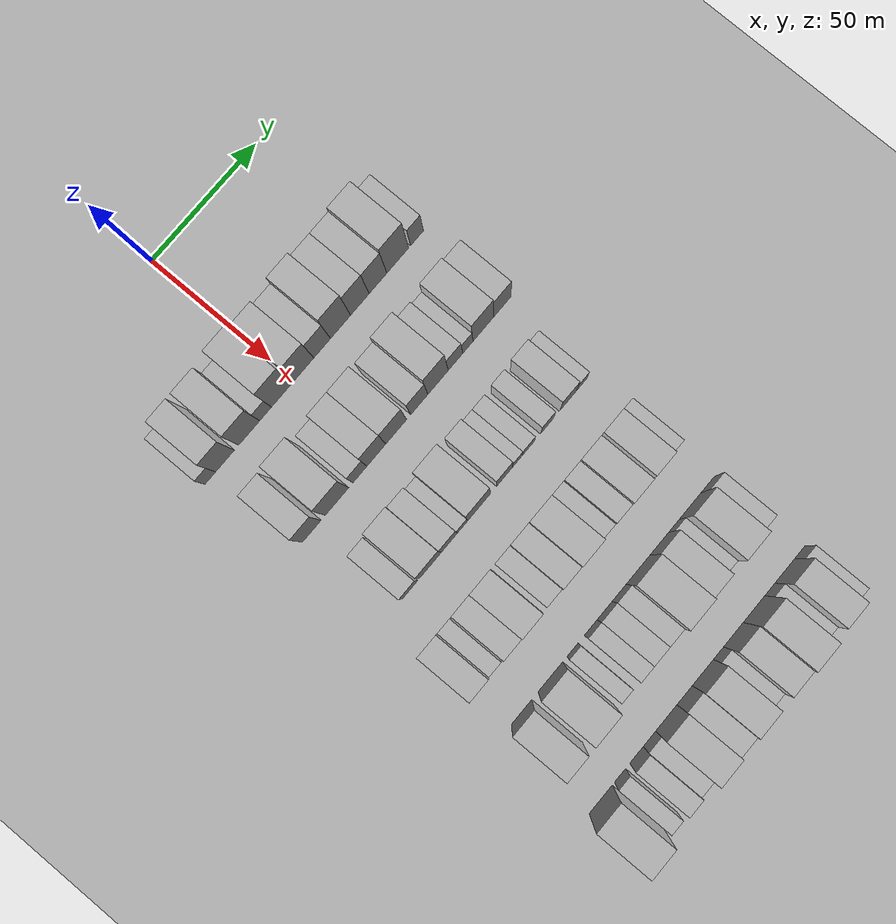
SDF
<sdf version="1.6">
 <world name="default">
  <include><name>ground_plane_1</name><uri>model://HANNAS_ground_plane</uri></include>
  <include>
   <name>ground_plane_2</name>
   <uri>model://HANNAS_ground_plane</uri>
   <pose>100 0 0  0 0 0</pose>
  </include>
  <model name="building_51">
   <static>1</static>
   <pose>50.0000 -39.9920 0 0.000000 0.000000 0.000000</pose>
   <link name="link">
    <pose>0 0 6.00 0 0 0</pose>
    <collision name="collision"><geometry><box><size>20.0000 5.0548 12.0000</size></box></geometry></collision>
    <visual name="visual">
     <cast_shadows>0</cast_shadows>
     <geometry><box><size>20.0000 5.0548 12.0000</size></box></geometry>
     <material>
      <script>
       <uri>model://HANNAS_wall/materials/scripts</uri>
       <uri>model://HANNAS_wall/materials/textures</uri>
       <name>vrc/HANNAS_wall</name>
      </script>
     </material>
    </visual>
   </link>
  </model>
  <model name="building_52">
   <static>1</static>
   <pose>50.0000 -33.0191 0 0.000000 0.000000 0.000000</pose>
   <link name="link">
    <pose>0 0 10.50 0 0 0</pose>
    <collision name="collision"><geometry><box><size>20.0000 8.8910 21.0000</size></box></geometry></collision>
    <visual name="visual">
     <cast_shadows>0</cast_shadows>
     <geometry><box><size>20.0000 8.8910 21.0000</size></box></geometry>
     <material>
      <script>
       <uri>model://HANNAS_wall/materials/scripts</uri>
       <uri>model://HANNAS_wall/materials/textures</uri>
       <name>vrc/HANNAS_wall</name>
      </script>
     </material>
    </visual>
   </link>
  </model>
  <model name="building_53">
   <static>1</static>
   <pose>50.0000 -21.5765 0 0.000000 0.000000 0.000000</pose>
   <link name="link">
    <pose>0 0 10.50 0 0 0</pose>
    <collision name="collision"><geometry><box><size>20.0000 9.9943 21.0000</size></box></geometry></collision>
    <visual name="visual">
     <cast_shadows>0</cast_shadows>
     <geometry><box><size>20.0000 9.9943 21.0000</size></box></geometry>
     <material>
      <script>
       <uri>model://HANNAS_wall/materials/scripts</uri>
       <uri>model://HANNAS_wall/materials/textures</uri>
       <name>vrc/HANNAS_wall</name>
      </script>
     </material>
    </visual>
   </link>
  </model>
  <model name="building_54">
   <static>1</static>
   <pose>50.0000 -13.7922 0 0.000000 0.000000 0.000000</pose>
   <link name="link">
    <pose>0 0 6.00 0 0 0</pose>
    <collision name="collision"><geometry><box><size>20.0000 5.5743 12.0000</size></box></geometry></collision>
    <visual name="visual">
     <cast_shadows>0</cast_shadows>
     <geometry><box><size>20.0000 5.5743 12.0000</size></box></geometry>
     <material>
      <script>
       <uri>model://HANNAS_wall/materials/scripts</uri>
       <uri>model://HANNAS_wall/materials/textures</uri>
       <name>vrc/HANNAS_wall</name>
      </script>
     </material>
    </visual>
   </link>
  </model>
  <model name="building_55">
   <static>1</static>
   <pose>50.0000 -6.0965 0 0.000000 0.000000 0.000000</pose>
   <link name="link">
    <pose>0 0 12.00 0 0 0</pose>
    <collision name="collision"><geometry><box><size>20.0000 9.8170 24.0000</size></box></geometry></collision>
    <visual name="visual">
     <cast_shadows>0</cast_shadows>
     <geometry><box><size>20.0000 9.8170 24.0000</size></box></geometry>
     <material>
      <script>
       <uri>model://HANNAS_wall/materials/scripts</uri>
       <uri>model://HANNAS_wall/materials/textures</uri>
       <name>vrc/HANNAS_wall</name>
      </script>
     </material>
    </visual>
   </link>
  </model>
  <model name="building_56">
   <static>1</static>
   <pose>50.0000 4.5471 0 0.000000 0.000000 0.000000</pose>
   <link name="link">
    <pose>0 0 10.50 0 0 0</pose>
    <collision name="collision"><geometry><box><size>20.0000 9.4703 21.0000</size></box></geometry></collision>
    <visual name="visual">
     <cast_shadows>0</cast_shadows>
     <geometry><box><size>20.0000 9.4703 21.0000</size></box></geometry>
     <material>
      <script>
       <uri>model://HANNAS_wall/materials/scripts</uri>
       <uri>model://HANNAS_wall/materials/textures</uri>
       <name>vrc/HANNAS_wall</name>
      </script>
     </material>
    </visual>
   </link>
  </model>
  <model name="building_57">
   <static>1</static>
   <pose>50.0000 13.3135 0 0.000000 0.000000 0.000000</pose>
   <link name="link">
    <pose>0 0 9.00 0 0 0</pose>
    <collision name="collision"><geometry><box><size>20.0000 8.0626 18.0000</size></box></geometry></collision>
    <visual name="visual">
     <cast_shadows>0</cast_shadows>
     <geometry><box><size>20.0000 8.0626 18.0000</size></box></geometry>
     <material>
      <script>
       <uri>model://HANNAS_wall/materials/scripts</uri>
       <uri>model://HANNAS_wall/materials/textures</uri>
       <name>vrc/HANNAS_wall</name>
      </script>
     </material>
    </visual>
   </link>
  </model>
  <model name="building_58">
   <static>1</static>
   <pose>50.0000 22.2032 0 0.000000 0.000000 0.000000</pose>
   <link name="link">
    <pose>0 0 12.00 0 0 0</pose>
    <collision name="collision"><geometry><box><size>20.0000 9.7168 24.0000</size></box></geometry></collision>
    <visual name="visual">
     <cast_shadows>0</cast_shadows>
     <geometry><box><size>20.0000 9.7168 24.0000</size></box></geometry>
     <material>
      <script>
       <uri>model://HANNAS_wall/materials/scripts</uri>
       <uri>model://HANNAS_wall/materials/textures</uri>
       <name>vrc/HANNAS_wall</name>
      </script>
     </material>
    </visual>
   </link>
  </model>
  <model name="building_59">
   <static>1</static>
   <pose>50.0000 31.5567 0 0.000000 0.000000 0.000000</pose>
   <link name="link">
    <pose>0 0 10.50 0 0 0</pose>
    <collision name="collision"><geometry><box><size>20.0000 8.9902 21.0000</size></box></geometry></collision>
    <visual name="visual">
     <cast_shadows>0</cast_shadows>
     <geometry><box><size>20.0000 8.9902 21.0000</size></box></geometry>
     <material>
      <script>
       <uri>model://HANNAS_wall/materials/scripts</uri>
       <uri>model://HANNAS_wall/materials/textures</uri>
       <name>vrc/HANNAS_wall</name>
      </script>
     </material>
    </visual>
   </link>
  </model>
  <model name="building_60">
   <static>1</static>
   <pose>50.0000 40.3786 0 0.000000 0.000000 0.000000</pose>
   <link name="link">
    <pose>0 0 10.50 0 0 0</pose>
    <collision name="collision"><geometry><box><size>20.0000 8.6536 21.0000</size></box></geometry></collision>
    <visual name="visual">
     <cast_shadows>0</cast_shadows>
     <geometry><box><size>20.0000 8.6536 21.0000</size></box></geometry>
     <material>
      <script>
       <uri>model://HANNAS_wall/materials/scripts</uri>
       <uri>model://HANNAS_wall/materials/textures</uri>
       <name>vrc/HANNAS_wall</name>
      </script>
     </material>
    </visual>
   </link>
  </model>
  <model name="building_61">
   <static>1</static>
   <pose>50.0000 49.9918 0 0.000000 0.000000 0.000000</pose>
   <link name="link">
    <pose>0 0 12.00 0 0 0</pose>
    <collision name="collision"><geometry><box><size>20.0000 10.5728 24.0000</size></box></geometry></collision>
    <visual name="visual">
     <cast_shadows>0</cast_shadows>
     <geometry><box><size>20.0000 10.5728 24.0000</size></box></geometry>
     <material>
      <script>
       <uri>model://HANNAS_wall/materials/scripts</uri>
       <uri>model://HANNAS_wall/materials/textures</uri>
       <name>vrc/HANNAS_wall</name>
      </script>
     </material>
    </visual>
   </link>
  </model>
  <model name="building_62">
   <static>1</static>
   <pose>50.0000 59.4463 0 0.000000 0.000000 0.000000</pose>
   <link name="link">
    <pose>0 0 7.50 0 0 0</pose>
    <collision name="collision"><geometry><box><size>20.0000 6.3362 15.0000</size></box></geometry></collision>
    <visual name="visual">
     <cast_shadows>0</cast_shadows>
     <geometry><box><size>20.0000 6.3362 15.0000</size></box></geometry>
     <material>
      <script>
       <uri>model://HANNAS_wall/materials/scripts</uri>
       <uri>model://HANNAS_wall/materials/textures</uri>
       <name>vrc/HANNAS_wall</name>
      </script>
     </material>
    </visual>
   </link>
  </model>
  <model name="building_181">
   <static>1</static>
   <pose>85.0000 -32.2683 0 0.000000 0.000000 0.000000</pose>
   <link name="link">
    <pose>0 0 10.50 0 0 0</pose>
    <collision name="collision"><geometry><box><size>20.0000 8.7727 21.0000</size></box></geometry></collision>
    <visual name="visual">
     <cast_shadows>0</cast_shadows>
     <geometry><box><size>20.0000 8.7727 21.0000</size></box></geometry>
     <material>
      <script>
       <uri>model://HANNAS_wall/materials/scripts</uri>
       <uri>model://HANNAS_wall/materials/textures</uri>
       <name>vrc/HANNAS_wall</name>
      </script>
     </material>
    </visual>
   </link>
  </model>
  <model name="building_182">
   <static>1</static>
   <pose>85.0000 -20.2963 0 0.000000 0.000000 0.000000</pose>
   <link name="link">
    <pose>0 0 12.00 0 0 0</pose>
    <collision name="collision"><geometry><box><size>20.0000 11.1713 24.0000</size></box></geometry></collision>
    <visual name="visual">
     <cast_shadows>0</cast_shadows>
     <geometry><box><size>20.0000 11.1713 24.0000</size></box></geometry>
     <material>
      <script>
       <uri>model://HANNAS_wall/materials/scripts</uri>
       <uri>model://HANNAS_wall/materials/textures</uri>
       <name>vrc/HANNAS_wall</name>
      </script>
     </material>
    </visual>
   </link>
  </model>
  <model name="building_183">
   <static>1</static>
   <pose>85.0000 -9.3406 0 0.000000 0.000000 0.000000</pose>
   <link name="link">
    <pose>0 0 7.50 0 0 0</pose>
    <collision name="collision"><geometry><box><size>20.0000 6.7401 15.0000</size></box></geometry></collision>
    <visual name="visual">
     <cast_shadows>0</cast_shadows>
     <geometry><box><size>20.0000 6.7401 15.0000</size></box></geometry>
     <material>
      <script>
       <uri>model://HANNAS_wall/materials/scripts</uri>
       <uri>model://HANNAS_wall/materials/textures</uri>
       <name>vrc/HANNAS_wall</name>
      </script>
     </material>
    </visual>
   </link>
  </model>
  <model name="building_184">
   <static>1</static>
   <pose>85.0000 -1.4527 0 0.000000 0.000000 0.000000</pose>
   <link name="link">
    <pose>0 0 10.50 0 0 0</pose>
    <collision name="collision"><geometry><box><size>20.0000 9.0357 21.0000</size></box></geometry></collision>
    <visual name="visual">
     <cast_shadows>0</cast_shadows>
     <geometry><box><size>20.0000 9.0357 21.0000</size></box></geometry>
     <material>
      <script>
       <uri>model://HANNAS_wall/materials/scripts</uri>
       <uri>model://HANNAS_wall/materials/textures</uri>
       <name>vrc/HANNAS_wall</name>
      </script>
     </material>
    </visual>
   </link>
  </model>
  <model name="building_185">
   <static>1</static>
   <pose>85.0000 8.0649 0 0.000000 0.000000 0.000000</pose>
   <link name="link">
    <pose>0 0 10.50 0 0 0</pose>
    <collision name="collision"><geometry><box><size>20.0000 9.9995 21.0000</size></box></geometry></collision>
    <visual name="visual">
     <cast_shadows>0</cast_shadows>
     <geometry><box><size>20.0000 9.9995 21.0000</size></box></geometry>
     <material>
      <script>
       <uri>model://HANNAS_wall/materials/scripts</uri>
       <uri>model://HANNAS_wall/materials/textures</uri>
       <name>vrc/HANNAS_wall</name>
      </script>
     </material>
    </visual>
   </link>
  </model>
  <model name="building_186">
   <static>1</static>
   <pose>85.0000 19.2113 0 0.000000 0.000000 0.000000</pose>
   <link name="link">
    <pose>0 0 9.00 0 0 0</pose>
    <collision name="collision"><geometry><box><size>20.0000 8.2933 18.0000</size></box></geometry></collision>
    <visual name="visual">
     <cast_shadows>0</cast_shadows>
     <geometry><box><size>20.0000 8.2933 18.0000</size></box></geometry>
     <material>
      <script>
       <uri>model://HANNAS_wall/materials/scripts</uri>
       <uri>model://HANNAS_wall/materials/textures</uri>
       <name>vrc/HANNAS_wall</name>
      </script>
     </material>
    </visual>
   </link>
  </model>
  <model name="building_187">
   <static>1</static>
   <pose>85.0000 28.2875 0 0.000000 0.000000 0.000000</pose>
   <link name="link">
    <pose>0 0 12.00 0 0 0</pose>
    <collision name="collision"><geometry><box><size>20.0000 9.8590 24.0000</size></box></geometry></collision>
    <visual name="visual">
     <cast_shadows>0</cast_shadows>
     <geometry><box><size>20.0000 9.8590 24.0000</size></box></geometry>
     <material>
      <script>
       <uri>model://HANNAS_wall/materials/scripts</uri>
       <uri>model://HANNAS_wall/materials/textures</uri>
       <name>vrc/HANNAS_wall</name>
      </script>
     </material>
    </visual>
   </link>
  </model>
  <model name="building_188">
   <static>1</static>
   <pose>85.0000 36.7310 0 0.000000 0.000000 0.000000</pose>
   <link name="link">
    <pose>0 0 7.50 0 0 0</pose>
    <collision name="collision"><geometry><box><size>20.0000 7.0282 15.0000</size></box></geometry></collision>
    <visual name="visual">
     <cast_shadows>0</cast_shadows>
     <geometry><box><size>20.0000 7.0282 15.0000</size></box></geometry>
     <material>
      <script>
       <uri>model://HANNAS_wall/materials/scripts</uri>
       <uri>model://HANNAS_wall/materials/textures</uri>
       <name>vrc/HANNAS_wall</name>
      </script>
     </material>
    </visual>
   </link>
  </model>
  <model name="building_189">
   <static>1</static>
   <pose>85.0000 42.7614 0 0.000000 0.000000 0.000000</pose>
   <link name="link">
    <pose>0 0 6.00 0 0 0</pose>
    <collision name="collision"><geometry><box><size>20.0000 5.0326 12.0000</size></box></geometry></collision>
    <visual name="visual">
     <cast_shadows>0</cast_shadows>
     <geometry><box><size>20.0000 5.0326 12.0000</size></box></geometry>
     <material>
      <script>
       <uri>model://HANNAS_wall/materials/scripts</uri>
       <uri>model://HANNAS_wall/materials/textures</uri>
       <name>vrc/HANNAS_wall</name>
      </script>
     </material>
    </visual>
   </link>
  </model>
  <model name="building_190">
   <static>1</static>
   <pose>85.0000 50.3806 0 0.000000 0.000000 0.000000</pose>
   <link name="link">
    <pose>0 0 10.50 0 0 0</pose>
    <collision name="collision"><geometry><box><size>20.0000 10.2059 21.0000</size></box></geometry></collision>
    <visual name="visual">
     <cast_shadows>0</cast_shadows>
     <geometry><box><size>20.0000 10.2059 21.0000</size></box></geometry>
     <material>
      <script>
       <uri>model://HANNAS_wall/materials/scripts</uri>
       <uri>model://HANNAS_wall/materials/textures</uri>
       <name>vrc/HANNAS_wall</name>
      </script>
     </material>
    </visual>
   </link>
  </model>
  <model name="building_191">
   <static>1</static>
   <pose>85.0000 59.7157 0 0.000000 0.000000 0.000000</pose>
   <link name="link">
    <pose>0 0 9.00 0 0 0</pose>
    <collision name="collision"><geometry><box><size>20.0000 8.4642 18.0000</size></box></geometry></collision>
    <visual name="visual">
     <cast_shadows>0</cast_shadows>
     <geometry><box><size>20.0000 8.4642 18.0000</size></box></geometry>
     <material>
      <script>
       <uri>model://HANNAS_wall/materials/scripts</uri>
       <uri>model://HANNAS_wall/materials/textures</uri>
       <name>vrc/HANNAS_wall</name>
      </script>
     </material>
    </visual>
   </link>
  </model>
  <model name="building_307">
   <static>1</static>
   <pose>120.0000 -26.4466 0 0.000000 0.000000 0.000000</pose>
   <link name="link">
    <pose>0 0 7.50 0 0 0</pose>
    <collision name="collision"><geometry><box><size>20.0000 7.2009 15.0000</size></box></geometry></collision>
    <visual name="visual">
     <cast_shadows>0</cast_shadows>
     <geometry><box><size>20.0000 7.2009 15.0000</size></box></geometry>
     <material>
      <script>
       <uri>model://HANNAS_wall/materials/scripts</uri>
       <uri>model://HANNAS_wall/materials/textures</uri>
       <name>vrc/HANNAS_wall</name>
      </script>
     </material>
    </visual>
   </link>
  </model>
  <model name="building_308">
   <static>1</static>
   <pose>120.0000 -16.6975 0 0.000000 0.000000 0.000000</pose>
   <link name="link">
    <pose>0 0 10.50 0 0 0</pose>
    <collision name="collision"><geometry><box><size>20.0000 10.2973 21.0000</size></box></geometry></collision>
    <visual name="visual">
     <cast_shadows>0</cast_shadows>
     <geometry><box><size>20.0000 10.2973 21.0000</size></box></geometry>
     <material>
      <script>
       <uri>model://HANNAS_wall/materials/scripts</uri>
       <uri>model://HANNAS_wall/materials/textures</uri>
       <name>vrc/HANNAS_wall</name>
      </script>
     </material>
    </visual>
   </link>
  </model>
  <model name="building_309">
   <static>1</static>
   <pose>120.0000 -7.7291 0 0.000000 0.000000 0.000000</pose>
   <link name="link">
    <pose>0 0 9.00 0 0 0</pose>
    <collision name="collision"><geometry><box><size>20.0000 7.6394 18.0000</size></box></geometry></collision>
    <visual name="visual">
     <cast_shadows>0</cast_shadows>
     <geometry><box><size>20.0000 7.6394 18.0000</size></box></geometry>
     <material>
      <script>
       <uri>model://HANNAS_wall/materials/scripts</uri>
       <uri>model://HANNAS_wall/materials/textures</uri>
       <name>vrc/HANNAS_wall</name>
      </script>
     </material>
    </visual>
   </link>
  </model>
  <model name="building_310">
   <static>1</static>
   <pose>120.0000 -1.4336 0 0.000000 0.000000 0.000000</pose>
   <link name="link">
    <pose>0 0 6.00 0 0 0</pose>
    <collision name="collision"><geometry><box><size>20.0000 4.9516 12.0000</size></box></geometry></collision>
    <visual name="visual">
     <cast_shadows>0</cast_shadows>
     <geometry><box><size>20.0000 4.9516 12.0000</size></box></geometry>
     <material>
      <script>
       <uri>model://HANNAS_wall/materials/scripts</uri>
       <uri>model://HANNAS_wall/materials/textures</uri>
       <name>vrc/HANNAS_wall</name>
      </script>
     </material>
    </visual>
   </link>
  </model>
  <model name="building_311">
   <static>1</static>
   <pose>120.0000 6.4903 0 0.000000 0.000000 0.000000</pose>
   <link name="link">
    <pose>0 0 12.00 0 0 0</pose>
    <collision name="collision"><geometry><box><size>20.0000 10.8963 24.0000</size></box></geometry></collision>
    <visual name="visual">
     <cast_shadows>0</cast_shadows>
     <geometry><box><size>20.0000 10.8963 24.0000</size></box></geometry>
     <material>
      <script>
       <uri>model://HANNAS_wall/materials/scripts</uri>
       <uri>model://HANNAS_wall/materials/textures</uri>
       <name>vrc/HANNAS_wall</name>
      </script>
     </material>
    </visual>
   </link>
  </model>
  <model name="building_312">
   <static>1</static>
   <pose>120.0000 18.7327 0 0.000000 0.000000 0.000000</pose>
   <link name="link">
    <pose>0 0 9.00 0 0 0</pose>
    <collision name="collision"><geometry><box><size>20.0000 7.5885 18.0000</size></box></geometry></collision>
    <visual name="visual">
     <cast_shadows>0</cast_shadows>
     <geometry><box><size>20.0000 7.5885 18.0000</size></box></geometry>
     <material>
      <script>
       <uri>model://HANNAS_wall/materials/scripts</uri>
       <uri>model://HANNAS_wall/materials/textures</uri>
       <name>vrc/HANNAS_wall</name>
      </script>
     </material>
    </visual>
   </link>
  </model>
  <model name="building_313">
   <static>1</static>
   <pose>120.0000 24.9641 0 0.000000 0.000000 0.000000</pose>
   <link name="link">
    <pose>0 0 6.00 0 0 0</pose>
    <collision name="collision"><geometry><box><size>20.0000 4.8743 12.0000</size></box></geometry></collision>
    <visual name="visual">
     <cast_shadows>0</cast_shadows>
     <geometry><box><size>20.0000 4.8743 12.0000</size></box></geometry>
     <material>
      <script>
       <uri>model://HANNAS_wall/materials/scripts</uri>
       <uri>model://HANNAS_wall/materials/textures</uri>
       <name>vrc/HANNAS_wall</name>
      </script>
     </material>
    </visual>
   </link>
  </model>
  <model name="building_314">
   <static>1</static>
   <pose>120.0000 30.3593 0 0.000000 0.000000 0.000000</pose>
   <link name="link">
    <pose>0 0 6.00 0 0 0</pose>
    <collision name="collision"><geometry><box><size>20.0000 5.9162 12.0000</size></box></geometry></collision>
    <visual name="visual">
     <cast_shadows>0</cast_shadows>
     <geometry><box><size>20.0000 5.9162 12.0000</size></box></geometry>
     <material>
      <script>
       <uri>model://HANNAS_wall/materials/scripts</uri>
       <uri>model://HANNAS_wall/materials/textures</uri>
       <name>vrc/HANNAS_wall</name>
      </script>
     </material>
    </visual>
   </link>
  </model>
  <model name="building_315">
   <static>1</static>
   <pose>120.0000 39.4682 0 0.000000 0.000000 0.000000</pose>
   <link name="link">
    <pose>0 0 7.50 0 0 0</pose>
    <collision name="collision"><geometry><box><size>20.0000 6.3015 15.0000</size></box></geometry></collision>
    <visual name="visual">
     <cast_shadows>0</cast_shadows>
     <geometry><box><size>20.0000 6.3015 15.0000</size></box></geometry>
     <material>
      <script>
       <uri>model://HANNAS_wall/materials/scripts</uri>
       <uri>model://HANNAS_wall/materials/textures</uri>
       <name>vrc/HANNAS_wall</name>
      </script>
     </material>
    </visual>
   </link>
  </model>
  <model name="building_316">
   <static>1</static>
   <pose>120.0000 49.6359 0 0.000000 0.000000 0.000000</pose>
   <link name="link">
    <pose>0 0 9.00 0 0 0</pose>
    <collision name="collision"><geometry><box><size>20.0000 8.0340 18.0000</size></box></geometry></collision>
    <visual name="visual">
     <cast_shadows>0</cast_shadows>
     <geometry><box><size>20.0000 8.0340 18.0000</size></box></geometry>
     <material>
      <script>
       <uri>model://HANNAS_wall/materials/scripts</uri>
       <uri>model://HANNAS_wall/materials/textures</uri>
       <name>vrc/HANNAS_wall</name>
      </script>
     </material>
    </visual>
   </link>
  </model>
  <model name="building_317">
   <static>1</static>
   <pose>120.0000 56.3112 0 0.000000 0.000000 0.000000</pose>
   <link name="link">
    <pose>0 0 6.00 0 0 0</pose>
    <collision name="collision"><geometry><box><size>20.0000 5.3166 12.0000</size></box></geometry></collision>
    <visual name="visual">
     <cast_shadows>0</cast_shadows>
     <geometry><box><size>20.0000 5.3166 12.0000</size></box></geometry>
     <material>
      <script>
       <uri>model://HANNAS_wall/materials/scripts</uri>
       <uri>model://HANNAS_wall/materials/textures</uri>
       <name>vrc/HANNAS_wall</name>
      </script>
     </material>
    </visual>
   </link>
  </model>
  <model name="building_439">
   <static>1</static>
   <pose>155.0000 -34.8948 0 0.000000 0.000000 0.000000</pose>
   <link name="link">
    <pose>0 0 9.00 0 0 0</pose>
    <collision name="collision"><geometry><box><size>20.0000 8.7013 18.0000</size></box></geometry></collision>
    <visual name="visual">
     <cast_shadows>0</cast_shadows>
     <geometry><box><size>20.0000 8.7013 18.0000</size></box></geometry>
     <material>
      <script>
       <uri>model://HANNAS_wall/materials/scripts</uri>
       <uri>model://HANNAS_wall/materials/textures</uri>
       <name>vrc/HANNAS_wall</name>
      </script>
     </material>
    </visual>
   </link>
  </model>
  <model name="building_440">
   <static>1</static>
   <pose>155.0000 -27.6650 0 0.000000 0.000000 0.000000</pose>
   <link name="link">
    <pose>0 0 6.00 0 0 0</pose>
    <collision name="collision"><geometry><box><size>20.0000 5.7583 12.0000</size></box></geometry></collision>
    <visual name="visual">
     <cast_shadows>0</cast_shadows>
     <geometry><box><size>20.0000 5.7583 12.0000</size></box></geometry>
     <material>
      <script>
       <uri>model://HANNAS_wall/materials/scripts</uri>
       <uri>model://HANNAS_wall/materials/textures</uri>
       <name>vrc/HANNAS_wall</name>
      </script>
     </material>
    </visual>
   </link>
  </model>
  <model name="building_441">
   <static>1</static>
   <pose>155.0000 -19.6189 0 0.000000 0.000000 0.000000</pose>
   <link name="link">
    <pose>0 0 9.00 0 0 0</pose>
    <collision name="collision"><geometry><box><size>20.0000 8.3338 18.0000</size></box></geometry></collision>
    <visual name="visual">
     <cast_shadows>0</cast_shadows>
     <geometry><box><size>20.0000 8.3338 18.0000</size></box></geometry>
     <material>
      <script>
       <uri>model://HANNAS_wall/materials/scripts</uri>
       <uri>model://HANNAS_wall/materials/textures</uri>
       <name>vrc/HANNAS_wall</name>
      </script>
     </material>
    </visual>
   </link>
  </model>
  <model name="building_442">
   <static>1</static>
   <pose>155.0000 -10.6565 0 0.000000 0.000000 0.000000</pose>
   <link name="link">
    <pose>0 0 10.50 0 0 0</pose>
    <collision name="collision"><geometry><box><size>20.0000 9.5912 21.0000</size></box></geometry></collision>
    <visual name="visual">
     <cast_shadows>0</cast_shadows>
     <geometry><box><size>20.0000 9.5912 21.0000</size></box></geometry>
     <material>
      <script>
       <uri>model://HANNAS_wall/materials/scripts</uri>
       <uri>model://HANNAS_wall/materials/textures</uri>
       <name>vrc/HANNAS_wall</name>
      </script>
     </material>
    </visual>
   </link>
  </model>
  <model name="building_443">
   <static>1</static>
   <pose>155.0000 -0.3198 0 0.000000 0.000000 0.000000</pose>
   <link name="link">
    <pose>0 0 7.50 0 0 0</pose>
    <collision name="collision"><geometry><box><size>20.0000 7.0821 15.0000</size></box></geometry></collision>
    <visual name="visual">
     <cast_shadows>0</cast_shadows>
     <geometry><box><size>20.0000 7.0821 15.0000</size></box></geometry>
     <material>
      <script>
       <uri>model://HANNAS_wall/materials/scripts</uri>
       <uri>model://HANNAS_wall/materials/textures</uri>
       <name>vrc/HANNAS_wall</name>
      </script>
     </material>
    </visual>
   </link>
  </model>
  <model name="building_444">
   <static>1</static>
   <pose>155.0000 7.4308 0 0.000000 0.000000 0.000000</pose>
   <link name="link">
    <pose>0 0 10.50 0 0 0</pose>
    <collision name="collision"><geometry><box><size>20.0000 8.4192 21.0000</size></box></geometry></collision>
    <visual name="visual">
     <cast_shadows>0</cast_shadows>
     <geometry><box><size>20.0000 8.4192 21.0000</size></box></geometry>
     <material>
      <script>
       <uri>model://HANNAS_wall/materials/scripts</uri>
       <uri>model://HANNAS_wall/materials/textures</uri>
       <name>vrc/HANNAS_wall</name>
      </script>
     </material>
    </visual>
   </link>
  </model>
  <model name="building_445">
   <static>1</static>
   <pose>155.0000 16.7908 0 0.000000 0.000000 0.000000</pose>
   <link name="link">
    <pose>0 0 12.00 0 0 0</pose>
    <collision name="collision"><geometry><box><size>20.0000 10.3006 24.0000</size></box></geometry></collision>
    <visual name="visual">
     <cast_shadows>0</cast_shadows>
     <geometry><box><size>20.0000 10.3006 24.0000</size></box></geometry>
     <material>
      <script>
       <uri>model://HANNAS_wall/materials/scripts</uri>
       <uri>model://HANNAS_wall/materials/textures</uri>
       <name>vrc/HANNAS_wall</name>
      </script>
     </material>
    </visual>
   </link>
  </model>
  <model name="building_446">
   <static>1</static>
   <pose>155.0000 25.0477 0 0.000000 0.000000 0.000000</pose>
   <link name="link">
    <pose>0 0 7.50 0 0 0</pose>
    <collision name="collision"><geometry><box><size>20.0000 6.2133 15.0000</size></box></geometry></collision>
    <visual name="visual">
     <cast_shadows>0</cast_shadows>
     <geometry><box><size>20.0000 6.2133 15.0000</size></box></geometry>
     <material>
      <script>
       <uri>model://HANNAS_wall/materials/scripts</uri>
       <uri>model://HANNAS_wall/materials/textures</uri>
       <name>vrc/HANNAS_wall</name>
      </script>
     </material>
    </visual>
   </link>
  </model>
  <model name="building_447">
   <static>1</static>
   <pose>155.0000 31.8627 0 0.000000 0.000000 0.000000</pose>
   <link name="link">
    <pose>0 0 9.00 0 0 0</pose>
    <collision name="collision"><geometry><box><size>20.0000 7.4166 18.0000</size></box></geometry></collision>
    <visual name="visual">
     <cast_shadows>0</cast_shadows>
     <geometry><box><size>20.0000 7.4166 18.0000</size></box></geometry>
     <material>
      <script>
       <uri>model://HANNAS_wall/materials/scripts</uri>
       <uri>model://HANNAS_wall/materials/textures</uri>
       <name>vrc/HANNAS_wall</name>
      </script>
     </material>
    </visual>
   </link>
  </model>
  <model name="building_448">
   <static>1</static>
   <pose>155.0000 40.2594 0 0.000000 0.000000 0.000000</pose>
   <link name="link">
    <pose>0 0 10.50 0 0 0</pose>
    <collision name="collision"><geometry><box><size>20.0000 9.3769 21.0000</size></box></geometry></collision>
    <visual name="visual">
     <cast_shadows>0</cast_shadows>
     <geometry><box><size>20.0000 9.3769 21.0000</size></box></geometry>
     <material>
      <script>
       <uri>model://HANNAS_wall/materials/scripts</uri>
       <uri>model://HANNAS_wall/materials/textures</uri>
       <name>vrc/HANNAS_wall</name>
      </script>
     </material>
    </visual>
   </link>
  </model>
  <model name="building_449">
   <static>1</static>
   <pose>155.0000 50.6097 0 0.000000 0.000000 0.000000</pose>
   <link name="link">
    <pose>0 0 10.50 0 0 0</pose>
    <collision name="collision"><geometry><box><size>20.0000 9.3236 21.0000</size></box></geometry></collision>
    <visual name="visual">
     <cast_shadows>0</cast_shadows>
     <geometry><box><size>20.0000 9.3236 21.0000</size></box></geometry>
     <material>
      <script>
       <uri>model://HANNAS_wall/materials/scripts</uri>
       <uri>model://HANNAS_wall/materials/textures</uri>
       <name>vrc/HANNAS_wall</name>
      </script>
     </material>
    </visual>
   </link>
  </model>
  <model name="building_450">
   <static>1</static>
   <pose>155.0000 58.7451 0 0.000000 0.000000 0.000000</pose>
   <link name="link">
    <pose>0 0 6.00 0 0 0</pose>
    <collision name="collision"><geometry><box><size>20.0000 4.9472 12.0000</size></box></geometry></collision>
    <visual name="visual">
     <cast_shadows>0</cast_shadows>
     <geometry><box><size>20.0000 4.9472 12.0000</size></box></geometry>
     <material>
      <script>
       <uri>model://HANNAS_wall/materials/scripts</uri>
       <uri>model://HANNAS_wall/materials/textures</uri>
       <name>vrc/HANNAS_wall</name>
      </script>
     </material>
    </visual>
   </link>
  </model>
  <model name="building_570">
   <static>1</static>
   <pose>190.0000 -33.1130 0 0.000000 0.000000 0.000000</pose>
   <link name="link">
    <pose>0 0 12.00 0 0 0</pose>
    <collision name="collision"><geometry><box><size>20.0000 9.7333 24.0000</size></box></geometry></collision>
    <visual name="visual">
     <cast_shadows>0</cast_shadows>
     <geometry><box><size>20.0000 9.7333 24.0000</size></box></geometry>
     <material>
      <script>
       <uri>model://HANNAS_wall/materials/scripts</uri>
       <uri>model://HANNAS_wall/materials/textures</uri>
       <name>vrc/HANNAS_wall</name>
      </script>
     </material>
    </visual>
   </link>
  </model>
  <model name="building_571">
   <static>1</static>
   <pose>190.0000 -19.3222 0 0.000000 0.000000 0.000000</pose>
   <link name="link">
    <pose>0 0 12.00 0 0 0</pose>
    <collision name="collision"><geometry><box><size>20.0000 11.8484 24.0000</size></box></geometry></collision>
    <visual name="visual">
     <cast_shadows>0</cast_shadows>
     <geometry><box><size>20.0000 11.8484 24.0000</size></box></geometry>
     <material>
      <script>
       <uri>model://HANNAS_wall/materials/scripts</uri>
       <uri>model://HANNAS_wall/materials/textures</uri>
       <name>vrc/HANNAS_wall</name>
      </script>
     </material>
    </visual>
   </link>
  </model>
  <model name="building_572">
   <static>1</static>
   <pose>190.0000 -8.7143 0 0.000000 0.000000 0.000000</pose>
   <link name="link">
    <pose>0 0 6.00 0 0 0</pose>
    <collision name="collision"><geometry><box><size>20.0000 5.3674 12.0000</size></box></geometry></collision>
    <visual name="visual">
     <cast_shadows>0</cast_shadows>
     <geometry><box><size>20.0000 5.3674 12.0000</size></box></geometry>
     <material>
      <script>
       <uri>model://HANNAS_wall/materials/scripts</uri>
       <uri>model://HANNAS_wall/materials/textures</uri>
       <name>vrc/HANNAS_wall</name>
      </script>
     </material>
    </visual>
   </link>
  </model>
  <model name="building_573">
   <static>1</static>
   <pose>190.0000 0.0521 0 0.000000 0.000000 0.000000</pose>
   <link name="link">
    <pose>0 0 7.50 0 0 0</pose>
    <collision name="collision"><geometry><box><size>20.0000 6.1653 15.0000</size></box></geometry></collision>
    <visual name="visual">
     <cast_shadows>0</cast_shadows>
     <geometry><box><size>20.0000 6.1653 15.0000</size></box></geometry>
     <material>
      <script>
       <uri>model://HANNAS_wall/materials/scripts</uri>
       <uri>model://HANNAS_wall/materials/textures</uri>
       <name>vrc/HANNAS_wall</name>
      </script>
     </material>
    </visual>
   </link>
  </model>
  <model name="building_574">
   <static>1</static>
   <pose>190.0000 6.7928 0 0.000000 0.000000 0.000000</pose>
   <link name="link">
    <pose>0 0 7.50 0 0 0</pose>
    <collision name="collision"><geometry><box><size>20.0000 7.3161 15.0000</size></box></geometry></collision>
    <visual name="visual">
     <cast_shadows>0</cast_shadows>
     <geometry><box><size>20.0000 7.3161 15.0000</size></box></geometry>
     <material>
      <script>
       <uri>model://HANNAS_wall/materials/scripts</uri>
       <uri>model://HANNAS_wall/materials/textures</uri>
       <name>vrc/HANNAS_wall</name>
      </script>
     </material>
    </visual>
   </link>
  </model>
  <model name="building_575">
   <static>1</static>
   <pose>190.0000 13.8762 0 0.000000 0.000000 0.000000</pose>
   <link name="link">
    <pose>0 0 7.50 0 0 0</pose>
    <collision name="collision"><geometry><box><size>20.0000 6.8508 15.0000</size></box></geometry></collision>
    <visual name="visual">
     <cast_shadows>0</cast_shadows>
     <geometry><box><size>20.0000 6.8508 15.0000</size></box></geometry>
     <material>
      <script>
       <uri>model://HANNAS_wall/materials/scripts</uri>
       <uri>model://HANNAS_wall/materials/textures</uri>
       <name>vrc/HANNAS_wall</name>
      </script>
     </material>
    </visual>
   </link>
  </model>
  <model name="building_576">
   <static>1</static>
   <pose>190.0000 23.1715 0 0.000000 0.000000 0.000000</pose>
   <link name="link">
    <pose>0 0 12.00 0 0 0</pose>
    <collision name="collision"><geometry><box><size>20.0000 11.7397 24.0000</size></box></geometry></collision>
    <visual name="visual">
     <cast_shadows>0</cast_shadows>
     <geometry><box><size>20.0000 11.7397 24.0000</size></box></geometry>
     <material>
      <script>
       <uri>model://HANNAS_wall/materials/scripts</uri>
       <uri>model://HANNAS_wall/materials/textures</uri>
       <name>vrc/HANNAS_wall</name>
      </script>
     </material>
    </visual>
   </link>
  </model>
  <model name="building_577">
   <static>1</static>
   <pose>190.0000 33.6197 0 0.000000 0.000000 0.000000</pose>
   <link name="link">
    <pose>0 0 10.50 0 0 0</pose>
    <collision name="collision"><geometry><box><size>20.0000 9.1566 21.0000</size></box></geometry></collision>
    <visual name="visual">
     <cast_shadows>0</cast_shadows>
     <geometry><box><size>20.0000 9.1566 21.0000</size></box></geometry>
     <material>
      <script>
       <uri>model://HANNAS_wall/materials/scripts</uri>
       <uri>model://HANNAS_wall/materials/textures</uri>
       <name>vrc/HANNAS_wall</name>
      </script>
     </material>
    </visual>
   </link>
  </model>
  <model name="building_578">
   <static>1</static>
   <pose>190.0000 40.7601 0 0.000000 0.000000 0.000000</pose>
   <link name="link">
    <pose>0 0 6.00 0 0 0</pose>
    <collision name="collision"><geometry><box><size>20.0000 5.1243 12.0000</size></box></geometry></collision>
    <visual name="visual">
     <cast_shadows>0</cast_shadows>
     <geometry><box><size>20.0000 5.1243 12.0000</size></box></geometry>
     <material>
      <script>
       <uri>model://HANNAS_wall/materials/scripts</uri>
       <uri>model://HANNAS_wall/materials/textures</uri>
       <name>vrc/HANNAS_wall</name>
      </script>
     </material>
    </visual>
   </link>
  </model>
  <model name="building_579">
   <static>1</static>
   <pose>190.0000 48.7021 0 0.000000 0.000000 0.000000</pose>
   <link name="link">
    <pose>0 0 12.00 0 0 0</pose>
    <collision name="collision"><geometry><box><size>20.0000 10.7595 24.0000</size></box></geometry></collision>
    <visual name="visual">
     <cast_shadows>0</cast_shadows>
     <geometry><box><size>20.0000 10.7595 24.0000</size></box></geometry>
     <material>
      <script>
       <uri>model://HANNAS_wall/materials/scripts</uri>
       <uri>model://HANNAS_wall/materials/textures</uri>
       <name>vrc/HANNAS_wall</name>
      </script>
     </material>
    </visual>
   </link>
  </model>
  <model name="building_580">
   <static>1</static>
   <pose>190.0000 57.4028 0 0.000000 0.000000 0.000000</pose>
   <link name="link">
    <pose>0 0 7.50 0 0 0</pose>
    <collision name="collision"><geometry><box><size>20.0000 6.6419 15.0000</size></box></geometry></collision>
    <visual name="visual">
     <cast_shadows>0</cast_shadows>
     <geometry><box><size>20.0000 6.6419 15.0000</size></box></geometry>
     <material>
      <script>
       <uri>model://HANNAS_wall/materials/scripts</uri>
       <uri>model://HANNAS_wall/materials/textures</uri>
       <name>vrc/HANNAS_wall</name>
      </script>
     </material>
    </visual>
   </link>
  </model>
  <model name="building_700">
   <static>1</static>
   <pose>225.0000 -37.8139 0 0.000000 0.000000 0.000000</pose>
   <link name="link">
    <pose>0 0 12.00 0 0 0</pose>
    <collision name="collision"><geometry><box><size>20.0000 11.0419 24.0000</size></box></geometry></collision>
    <visual name="visual">
     <cast_shadows>0</cast_shadows>
     <geometry><box><size>20.0000 11.0419 24.0000</size></box></geometry>
     <material>
      <script>
       <uri>model://HANNAS_wall/materials/scripts</uri>
       <uri>model://HANNAS_wall/materials/textures</uri>
       <name>vrc/HANNAS_wall</name>
      </script>
     </material>
    </visual>
   </link>
  </model>
  <model name="building_701">
   <static>1</static>
   <pose>225.0000 -28.5940 0 0.000000 0.000000 0.000000</pose>
   <link name="link">
    <pose>0 0 6.00 0 0 0</pose>
    <collision name="collision"><geometry><box><size>20.0000 5.3980 12.0000</size></box></geometry></collision>
    <visual name="visual">
     <cast_shadows>0</cast_shadows>
     <geometry><box><size>20.0000 5.3980 12.0000</size></box></geometry>
     <material>
      <script>
       <uri>model://HANNAS_wall/materials/scripts</uri>
       <uri>model://HANNAS_wall/materials/textures</uri>
       <name>vrc/HANNAS_wall</name>
      </script>
     </material>
    </visual>
   </link>
  </model>
  <model name="building_702">
   <static>1</static>
   <pose>225.0000 -20.6201 0 0.000000 0.000000 0.000000</pose>
   <link name="link">
    <pose>0 0 7.50 0 0 0</pose>
    <collision name="collision"><geometry><box><size>20.0000 6.5496 15.0000</size></box></geometry></collision>
    <visual name="visual">
     <cast_shadows>0</cast_shadows>
     <geometry><box><size>20.0000 6.5496 15.0000</size></box></geometry>
     <material>
      <script>
       <uri>model://HANNAS_wall/materials/scripts</uri>
       <uri>model://HANNAS_wall/materials/textures</uri>
       <name>vrc/HANNAS_wall</name>
      </script>
     </material>
    </visual>
   </link>
  </model>
  <model name="building_703">
   <static>1</static>
   <pose>225.0000 -14.3489 0 0.000000 0.000000 0.000000</pose>
   <link name="link">
    <pose>0 0 6.00 0 0 0</pose>
    <collision name="collision"><geometry><box><size>20.0000 5.9928 12.0000</size></box></geometry></collision>
    <visual name="visual">
     <cast_shadows>0</cast_shadows>
     <geometry><box><size>20.0000 5.9928 12.0000</size></box></geometry>
     <material>
      <script>
       <uri>model://HANNAS_wall/materials/scripts</uri>
       <uri>model://HANNAS_wall/materials/textures</uri>
       <name>vrc/HANNAS_wall</name>
      </script>
     </material>
    </visual>
   </link>
  </model>
  <model name="building_704">
   <static>1</static>
   <pose>225.0000 -6.2215 0 0.000000 0.000000 0.000000</pose>
   <link name="link">
    <pose>0 0 10.50 0 0 0</pose>
    <collision name="collision"><geometry><box><size>20.0000 10.2620 21.0000</size></box></geometry></collision>
    <visual name="visual">
     <cast_shadows>0</cast_shadows>
     <geometry><box><size>20.0000 10.2620 21.0000</size></box></geometry>
     <material>
      <script>
       <uri>model://HANNAS_wall/materials/scripts</uri>
       <uri>model://HANNAS_wall/materials/textures</uri>
       <name>vrc/HANNAS_wall</name>
      </script>
     </material>
    </visual>
   </link>
  </model>
  <model name="building_705">
   <static>1</static>
   <pose>225.0000 2.6426 0 0.000000 0.000000 0.000000</pose>
   <link name="link">
    <pose>0 0 9.00 0 0 0</pose>
    <collision name="collision"><geometry><box><size>20.0000 7.4663 18.0000</size></box></geometry></collision>
    <visual name="visual">
     <cast_shadows>0</cast_shadows>
     <geometry><box><size>20.0000 7.4663 18.0000</size></box></geometry>
     <material>
      <script>
       <uri>model://HANNAS_wall/materials/scripts</uri>
       <uri>model://HANNAS_wall/materials/textures</uri>
       <name>vrc/HANNAS_wall</name>
      </script>
     </material>
    </visual>
   </link>
  </model>
  <model name="building_706">
   <static>1</static>
   <pose>225.0000 11.5240 0 0.000000 0.000000 0.000000</pose>
   <link name="link">
    <pose>0 0 10.50 0 0 0</pose>
    <collision name="collision"><geometry><box><size>20.0000 10.2965 21.0000</size></box></geometry></collision>
    <visual name="visual">
     <cast_shadows>0</cast_shadows>
     <geometry><box><size>20.0000 10.2965 21.0000</size></box></geometry>
     <material>
      <script>
       <uri>model://HANNAS_wall/materials/scripts</uri>
       <uri>model://HANNAS_wall/materials/textures</uri>
       <name>vrc/HANNAS_wall</name>
      </script>
     </material>
    </visual>
   </link>
  </model>
  <model name="building_707">
   <static>1</static>
   <pose>225.0000 19.1576 0 0.000000 0.000000 0.000000</pose>
   <link name="link">
    <pose>0 0 6.00 0 0 0</pose>
    <collision name="collision"><geometry><box><size>20.0000 4.9706 12.0000</size></box></geometry></collision>
    <visual name="visual">
     <cast_shadows>0</cast_shadows>
     <geometry><box><size>20.0000 4.9706 12.0000</size></box></geometry>
     <material>
      <script>
       <uri>model://HANNAS_wall/materials/scripts</uri>
       <uri>model://HANNAS_wall/materials/textures</uri>
       <name>vrc/HANNAS_wall</name>
      </script>
     </material>
    </visual>
   </link>
  </model>
  <model name="building_708">
   <static>1</static>
   <pose>225.0000 26.4784 0 0.000000 0.000000 0.000000</pose>
   <link name="link">
    <pose>0 0 10.50 0 0 0</pose>
    <collision name="collision"><geometry><box><size>20.0000 9.6711 21.0000</size></box></geometry></collision>
    <visual name="visual">
     <cast_shadows>0</cast_shadows>
     <geometry><box><size>20.0000 9.6711 21.0000</size></box></geometry>
     <material>
      <script>
       <uri>model://HANNAS_wall/materials/scripts</uri>
       <uri>model://HANNAS_wall/materials/textures</uri>
       <name>vrc/HANNAS_wall</name>
      </script>
     </material>
    </visual>
   </link>
  </model>
  <model name="building_709">
   <static>1</static>
   <pose>225.0000 36.6193 0 0.000000 0.000000 0.000000</pose>
   <link name="link">
    <pose>0 0 12.00 0 0 0</pose>
    <collision name="collision"><geometry><box><size>20.0000 10.6105 24.0000</size></box></geometry></collision>
    <visual name="visual">
     <cast_shadows>0</cast_shadows>
     <geometry><box><size>20.0000 10.6105 24.0000</size></box></geometry>
     <material>
      <script>
       <uri>model://HANNAS_wall/materials/scripts</uri>
       <uri>model://HANNAS_wall/materials/textures</uri>
       <name>vrc/HANNAS_wall</name>
      </script>
     </material>
    </visual>
   </link>
  </model>
  <model name="building_710">
   <static>1</static>
   <pose>225.0000 44.4374 0 0.000000 0.000000 0.000000</pose>
   <link name="link">
    <pose>0 0 6.00 0 0 0</pose>
    <collision name="collision"><geometry><box><size>20.0000 5.0257 12.0000</size></box></geometry></collision>
    <visual name="visual">
     <cast_shadows>0</cast_shadows>
     <geometry><box><size>20.0000 5.0257 12.0000</size></box></geometry>
     <material>
      <script>
       <uri>model://HANNAS_wall/materials/scripts</uri>
       <uri>model://HANNAS_wall/materials/textures</uri>
       <name>vrc/HANNAS_wall</name>
      </script>
     </material>
    </visual>
   </link>
  </model>
  <model name="building_711">
   <static>1</static>
   <pose>225.0000 51.8481 0 0.000000 0.000000 0.000000</pose>
   <link name="link">
    <pose>0 0 10.50 0 0 0</pose>
    <collision name="collision"><geometry><box><size>20.0000 9.7958 21.0000</size></box></geometry></collision>
    <visual name="visual">
     <cast_shadows>0</cast_shadows>
     <geometry><box><size>20.0000 9.7958 21.0000</size></box></geometry>
     <material>
      <script>
       <uri>model://HANNAS_wall/materials/scripts</uri>
       <uri>model://HANNAS_wall/materials/textures</uri>
       <name>vrc/HANNAS_wall</name>
      </script>
     </material>
    </visual>
   </link>
  </model>
  <model name="building_712">
   <static>1</static>
   <pose>225.0000 59.2764 0 0.000000 0.000000 0.000000</pose>
   <link name="link">
    <pose>0 0 6.00 0 0 0</pose>
    <collision name="collision"><geometry><box><size>20.0000 5.0608 12.0000</size></box></geometry></collision>
    <visual name="visual">
     <cast_shadows>0</cast_shadows>
     <geometry><box><size>20.0000 5.0608 12.0000</size></box></geometry>
     <material>
      <script>
       <uri>model://HANNAS_wall/materials/scripts</uri>
       <uri>model://HANNAS_wall/materials/textures</uri>
       <name>vrc/HANNAS_wall</name>
      </script>
     </material>
    </visual>
   </link>
  </model>
 </world>
</sdf>
